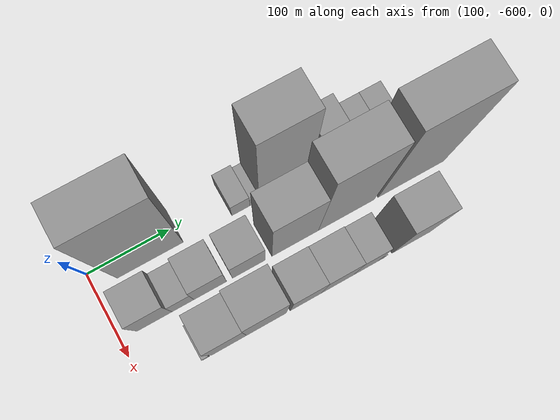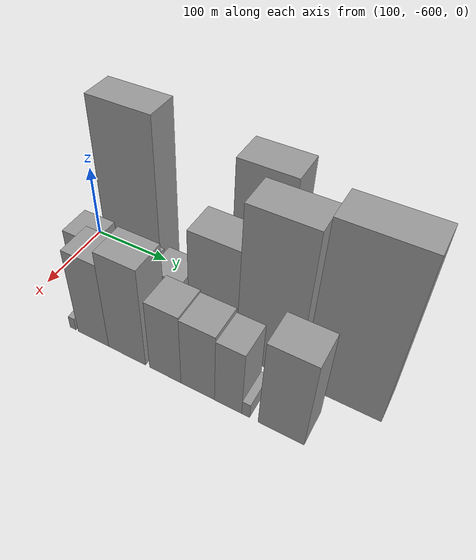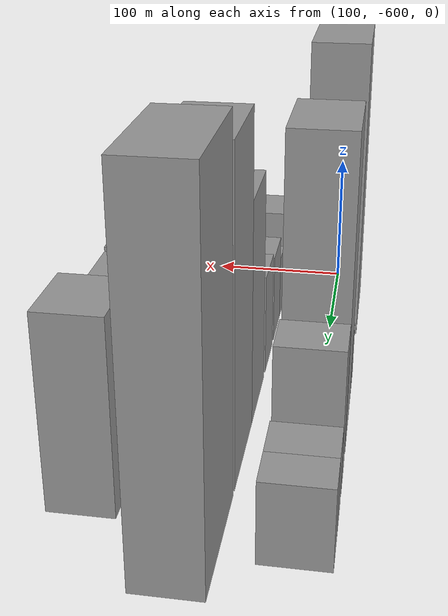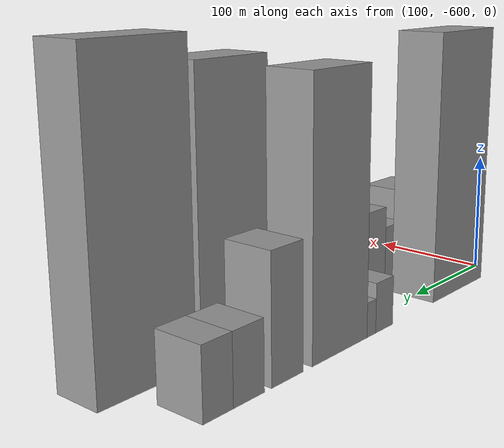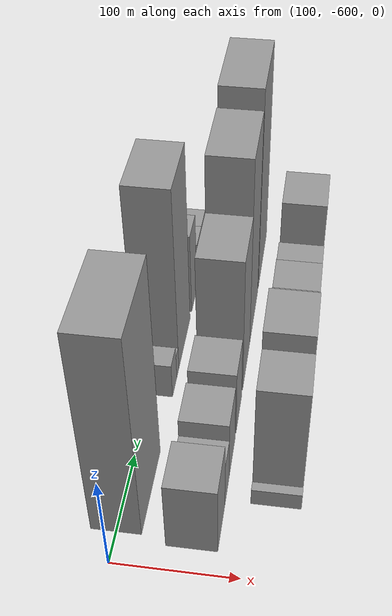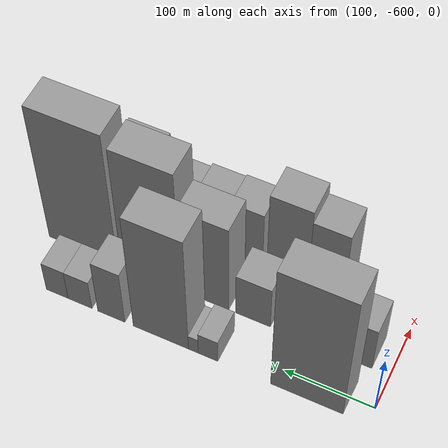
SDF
<sdf version="1.6">
 <world name="default">
  <model name="building_1">
   <static>1</static>
   <pose>100.0000 -533.1704 0 0.000000 0.000000 0.000000</pose>
   <link name="link">
    <pose>0 0 108.00 0 0 0</pose>
    <collision name="collision"><geometry><box><size>40.0000 79.6592 216.0000</size></box></geometry></collision>
    <visual name="visual">
     <cast_shadows>0</cast_shadows>
     <geometry><box><size>40.0000 79.6592 216.0000</size></box></geometry>
     <material>
      <script>
       <uri>model://grey_wall/materials/scripts</uri>
       <uri>model://grey_wall/materials/textures</uri>
       <name>vrc/grey_wall</name>
      </script>
     </material>
    </visual>
   </link>
  </model>
  <model name="building_2">
   <static>1</static>
   <pose>100.0000 -422.7327 0 0.000000 0.000000 0.000000</pose>
   <link name="link">
    <pose>0 0 19.50 0 0 0</pose>
    <collision name="collision"><geometry><box><size>40.0000 22.4054 39.0000</size></box></geometry></collision>
    <visual name="visual">
     <cast_shadows>0</cast_shadows>
     <geometry><box><size>40.0000 22.4054 39.0000</size></box></geometry>
     <material>
      <script>
       <uri>model://grey_wall/materials/scripts</uri>
       <uri>model://grey_wall/materials/textures</uri>
       <name>vrc/grey_wall</name>
      </script>
     </material>
    </visual>
   </link>
  </model>
  <model name="building_3">
   <static>1</static>
   <pose>100.0000 -405.9217 0 0.000000 0.000000 0.000000</pose>
   <link name="link">
    <pose>0 0 13.50 0 0 0</pose>
    <collision name="collision"><geometry><box><size>40.0000 11.2166 27.0000</size></box></geometry></collision>
    <visual name="visual">
     <cast_shadows>0</cast_shadows>
     <geometry><box><size>40.0000 11.2166 27.0000</size></box></geometry>
     <material>
      <script>
       <uri>model://grey_wall/materials/scripts</uri>
       <uri>model://grey_wall/materials/textures</uri>
       <name>vrc/grey_wall</name>
      </script>
     </material>
    </visual>
   </link>
  </model>
  <model name="building_4">
   <static>1</static>
   <pose>100.0000 -368.2056 0 0.000000 0.000000 0.000000</pose>
   <link name="link">
    <pose>0 0 100.50 0 0 0</pose>
    <collision name="collision"><geometry><box><size>40.0000 64.2155 201.0000</size></box></geometry></collision>
    <visual name="visual">
     <cast_shadows>0</cast_shadows>
     <geometry><box><size>40.0000 64.2155 201.0000</size></box></geometry>
     <material>
      <script>
       <uri>model://grey_wall/materials/scripts</uri>
       <uri>model://grey_wall/materials/textures</uri>
       <name>vrc/grey_wall</name>
      </script>
     </material>
    </visual>
   </link>
  </model>
  <model name="building_5">
   <static>1</static>
   <pose>100.0000 -310.0719 0 0.000000 0.000000 0.000000</pose>
   <link name="link">
    <pose>0 0 46.50 0 0 0</pose>
    <collision name="collision"><geometry><box><size>40.0000 32.0519 93.0000</size></box></geometry></collision>
    <visual name="visual">
     <cast_shadows>0</cast_shadows>
     <geometry><box><size>40.0000 32.0519 93.0000</size></box></geometry>
     <material>
      <script>
       <uri>model://grey_wall/materials/scripts</uri>
       <uri>model://grey_wall/materials/textures</uri>
       <name>vrc/grey_wall</name>
      </script>
     </material>
    </visual>
   </link>
  </model>
  <model name="building_6">
   <static>1</static>
   <pose>100.0000 -272.6769 0 0.000000 0.000000 0.000000</pose>
   <link name="link">
    <pose>0 0 25.50 0 0 0</pose>
    <collision name="collision"><geometry><box><size>40.0000 28.7380 51.0000</size></box></geometry></collision>
    <visual name="visual">
     <cast_shadows>0</cast_shadows>
     <geometry><box><size>40.0000 28.7380 51.0000</size></box></geometry>
     <material>
      <script>
       <uri>model://grey_wall/materials/scripts</uri>
       <uri>model://grey_wall/materials/textures</uri>
       <name>vrc/grey_wall</name>
      </script>
     </material>
    </visual>
   </link>
  </model>
  <model name="building_7">
   <static>1</static>
   <pose>100.0000 -245.1332 0 0.000000 0.000000 0.000000</pose>
   <link name="link">
    <pose>0 0 25.50 0 0 0</pose>
    <collision name="collision"><geometry><box><size>40.0000 26.3495 51.0000</size></box></geometry></collision>
    <visual name="visual">
     <cast_shadows>0</cast_shadows>
     <geometry><box><size>40.0000 26.3495 51.0000</size></box></geometry>
     <material>
      <script>
       <uri>model://grey_wall/materials/scripts</uri>
       <uri>model://grey_wall/materials/textures</uri>
       <name>vrc/grey_wall</name>
      </script>
     </material>
    </visual>
   </link>
  </model>
  <model name="building_27">
   <static>1</static>
   <pose>160.0000 -559.2378 0 0.000000 0.000000 0.000000</pose>
   <link name="link">
    <pose>0 0 37.50 0 0 0</pose>
    <collision name="collision"><geometry><box><size>40.0000 41.5244 75.0000</size></box></geometry></collision>
    <visual name="visual">
     <cast_shadows>0</cast_shadows>
     <geometry><box><size>40.0000 41.5244 75.0000</size></box></geometry>
     <material>
      <script>
       <uri>model://grey_wall/materials/scripts</uri>
       <uri>model://grey_wall/materials/textures</uri>
       <name>vrc/grey_wall</name>
      </script>
     </material>
    </visual>
   </link>
  </model>
  <model name="building_28">
   <static>1</static>
   <pose>160.0000 -525.4002 0 0.000000 0.000000 0.000000</pose>
   <link name="link">
    <pose>0 0 24.00 0 0 0</pose>
    <collision name="collision"><geometry><box><size>40.0000 26.1507 48.0000</size></box></geometry></collision>
    <visual name="visual">
     <cast_shadows>0</cast_shadows>
     <geometry><box><size>40.0000 26.1507 48.0000</size></box></geometry>
     <material>
      <script>
       <uri>model://grey_wall/materials/scripts</uri>
       <uri>model://grey_wall/materials/textures</uri>
       <name>vrc/grey_wall</name>
      </script>
     </material>
    </visual>
   </link>
  </model>
  <model name="building_29">
   <static>1</static>
   <pose>160.0000 -492.6658 0 0.000000 0.000000 0.000000</pose>
   <link name="link">
    <pose>0 0 33.00 0 0 0</pose>
    <collision name="collision"><geometry><box><size>40.0000 39.3182 66.0000</size></box></geometry></collision>
    <visual name="visual">
     <cast_shadows>0</cast_shadows>
     <geometry><box><size>40.0000 39.3182 66.0000</size></box></geometry>
     <material>
      <script>
       <uri>model://grey_wall/materials/scripts</uri>
       <uri>model://grey_wall/materials/textures</uri>
       <name>vrc/grey_wall</name>
      </script>
     </material>
    </visual>
   </link>
  </model>
  <model name="building_30">
   <static>1</static>
   <pose>160.0000 -445.9524 0 0.000000 0.000000 0.000000</pose>
   <link name="link">
    <pose>0 0 36.00 0 0 0</pose>
    <collision name="collision"><geometry><box><size>40.0000 40.1085 72.0000</size></box></geometry></collision>
    <visual name="visual">
     <cast_shadows>0</cast_shadows>
     <geometry><box><size>40.0000 40.1085 72.0000</size></box></geometry>
     <material>
      <script>
       <uri>model://grey_wall/materials/scripts</uri>
       <uri>model://grey_wall/materials/textures</uri>
       <name>vrc/grey_wall</name>
      </script>
     </material>
    </visual>
   </link>
  </model>
  <model name="building_31">
   <static>1</static>
   <pose>160.0000 -389.2653 0 0.000000 0.000000 0.000000</pose>
   <link name="link">
    <pose>0 0 75.00 0 0 0</pose>
    <collision name="collision"><geometry><box><size>40.0000 57.2656 150.0000</size></box></geometry></collision>
    <visual name="visual">
     <cast_shadows>0</cast_shadows>
     <geometry><box><size>40.0000 57.2656 150.0000</size></box></geometry>
     <material>
      <script>
       <uri>model://grey_wall/materials/scripts</uri>
       <uri>model://grey_wall/materials/textures</uri>
       <name>vrc/grey_wall</name>
      </script>
     </material>
    </visual>
   </link>
  </model>
  <model name="building_32">
   <static>1</static>
   <pose>160.0000 -325.5553 0 0.000000 0.000000 0.000000</pose>
   <link name="link">
    <pose>0 0 103.50 0 0 0</pose>
    <collision name="collision"><geometry><box><size>40.0000 70.1543 207.0000</size></box></geometry></collision>
    <visual name="visual">
     <cast_shadows>0</cast_shadows>
     <geometry><box><size>40.0000 70.1543 207.0000</size></box></geometry>
     <material>
      <script>
       <uri>model://grey_wall/materials/scripts</uri>
       <uri>model://grey_wall/materials/textures</uri>
       <name>vrc/grey_wall</name>
      </script>
     </material>
    </visual>
   </link>
  </model>
  <model name="building_33">
   <static>1</static>
   <pose>160.0000 -243.4964 0 0.000000 0.000000 0.000000</pose>
   <link name="link">
    <pose>0 0 112.50 0 0 0</pose>
    <collision name="collision"><geometry><box><size>40.0000 83.9636 225.0000</size></box></geometry></collision>
    <visual name="visual">
     <cast_shadows>0</cast_shadows>
     <geometry><box><size>40.0000 83.9636 225.0000</size></box></geometry>
     <material>
      <script>
       <uri>model://grey_wall/materials/scripts</uri>
       <uri>model://grey_wall/materials/textures</uri>
       <name>vrc/grey_wall</name>
      </script>
     </material>
    </visual>
   </link>
  </model>
  <model name="building_55">
   <static>1</static>
   <pose>220.0000 -530.0269 0 0.000000 0.000000 0.000000</pose>
   <link name="link">
    <pose>0 0 9.00 0 0 0</pose>
    <collision name="collision"><geometry><box><size>40.0000 7.9821 18.0000</size></box></geometry></collision>
    <visual name="visual">
     <cast_shadows>0</cast_shadows>
     <geometry><box><size>40.0000 7.9821 18.0000</size></box></geometry>
     <material>
      <script>
       <uri>model://grey_wall/materials/scripts</uri>
       <uri>model://grey_wall/materials/textures</uri>
       <name>vrc/grey_wall</name>
      </script>
     </material>
    </visual>
   </link>
  </model>
  <model name="building_56">
   <static>1</static>
   <pose>220.0000 -502.4890 0 0.000000 0.000000 0.000000</pose>
   <link name="link">
    <pose>0 0 61.50 0 0 0</pose>
    <collision name="collision"><geometry><box><size>40.0000 41.0937 123.0000</size></box></geometry></collision>
    <visual name="visual">
     <cast_shadows>0</cast_shadows>
     <geometry><box><size>40.0000 41.0937 123.0000</size></box></geometry>
     <material>
      <script>
       <uri>model://grey_wall/materials/scripts</uri>
       <uri>model://grey_wall/materials/textures</uri>
       <name>vrc/grey_wall</name>
      </script>
     </material>
    </visual>
   </link>
  </model>
  <model name="building_57">
   <static>1</static>
   <pose>220.0000 -458.2205 0 0.000000 0.000000 0.000000</pose>
   <link name="link">
    <pose>0 0 70.50 0 0 0</pose>
    <collision name="collision"><geometry><box><size>40.0000 47.4434 141.0000</size></box></geometry></collision>
    <visual name="visual">
     <cast_shadows>0</cast_shadows>
     <geometry><box><size>40.0000 47.4434 141.0000</size></box></geometry>
     <material>
      <script>
       <uri>model://grey_wall/materials/scripts</uri>
       <uri>model://grey_wall/materials/textures</uri>
       <name>vrc/grey_wall</name>
      </script>
     </material>
    </visual>
   </link>
  </model>
  <model name="building_58">
   <static>1</static>
   <pose>220.0000 -410.4309 0 0.000000 0.000000 0.000000</pose>
   <link name="link">
    <pose>0 0 51.00 0 0 0</pose>
    <collision name="collision"><geometry><box><size>40.0000 38.1357 102.0000</size></box></geometry></collision>
    <visual name="visual">
     <cast_shadows>0</cast_shadows>
     <geometry><box><size>40.0000 38.1357 102.0000</size></box></geometry>
     <material>
      <script>
       <uri>model://grey_wall/materials/scripts</uri>
       <uri>model://grey_wall/materials/textures</uri>
       <name>vrc/grey_wall</name>
      </script>
     </material>
    </visual>
   </link>
  </model>
  <model name="building_59">
   <static>1</static>
   <pose>220.0000 -371.8674 0 0.000000 0.000000 0.000000</pose>
   <link name="link">
    <pose>0 0 49.50 0 0 0</pose>
    <collision name="collision"><geometry><box><size>40.0000 38.9912 99.0000</size></box></geometry></collision>
    <visual name="visual">
     <cast_shadows>0</cast_shadows>
     <geometry><box><size>40.0000 38.9912 99.0000</size></box></geometry>
     <material>
      <script>
       <uri>model://grey_wall/materials/scripts</uri>
       <uri>model://grey_wall/materials/textures</uri>
       <name>vrc/grey_wall</name>
      </script>
     </material>
    </visual>
   </link>
  </model>
  <model name="building_60">
   <static>1</static>
   <pose>220.0000 -337.1513 0 0.000000 0.000000 0.000000</pose>
   <link name="link">
    <pose>0 0 46.50 0 0 0</pose>
    <collision name="collision"><geometry><box><size>40.0000 30.4411 93.0000</size></box></geometry></collision>
    <visual name="visual">
     <cast_shadows>0</cast_shadows>
     <geometry><box><size>40.0000 30.4411 93.0000</size></box></geometry>
     <material>
      <script>
       <uri>model://grey_wall/materials/scripts</uri>
       <uri>model://grey_wall/materials/textures</uri>
       <name>vrc/grey_wall</name>
      </script>
     </material>
    </visual>
   </link>
  </model>
  <model name="building_61">
   <static>1</static>
   <pose>220.0000 -317.5096 0 0.000000 0.000000 0.000000</pose>
   <link name="link">
    <pose>0 0 10.50 0 0 0</pose>
    <collision name="collision"><geometry><box><size>40.0000 8.8423 21.0000</size></box></geometry></collision>
    <visual name="visual">
     <cast_shadows>0</cast_shadows>
     <geometry><box><size>40.0000 8.8423 21.0000</size></box></geometry>
     <material>
      <script>
       <uri>model://grey_wall/materials/scripts</uri>
       <uri>model://grey_wall/materials/textures</uri>
       <name>vrc/grey_wall</name>
      </script>
     </material>
    </visual>
   </link>
  </model>
  <model name="building_62">
   <static>1</static>
   <pose>220.0000 -279.9840 0 0.000000 0.000000 0.000000</pose>
   <link name="link">
    <pose>0 0 61.50 0 0 0</pose>
    <collision name="collision"><geometry><box><size>40.0000 48.2088 123.0000</size></box></geometry></collision>
    <visual name="visual">
     <cast_shadows>0</cast_shadows>
     <geometry><box><size>40.0000 48.2088 123.0000</size></box></geometry>
     <material>
      <script>
       <uri>model://grey_wall/materials/scripts</uri>
       <uri>model://grey_wall/materials/textures</uri>
       <name>vrc/grey_wall</name>
      </script>
     </material>
    </visual>
   </link>
  </model>
 </world>
</sdf>
